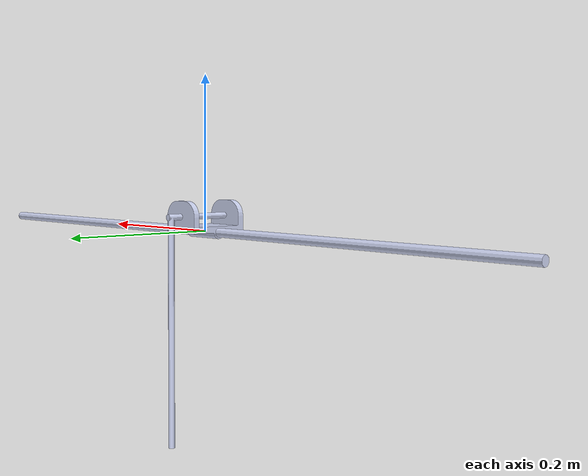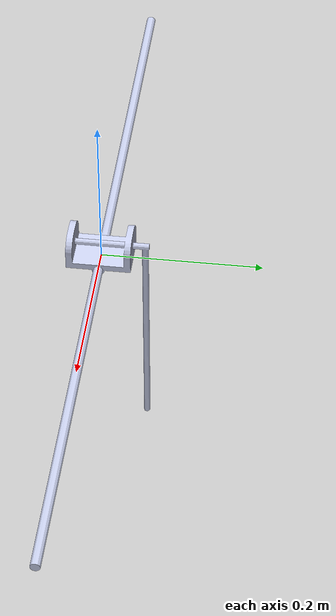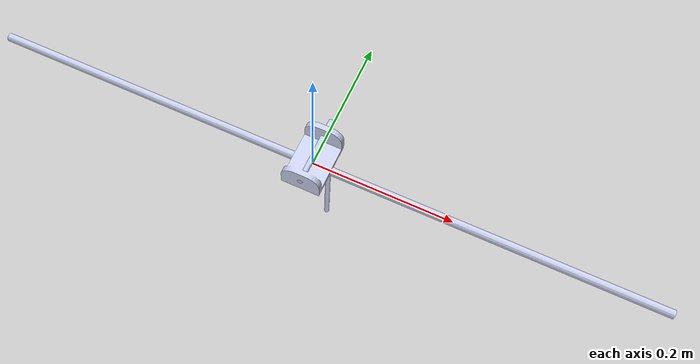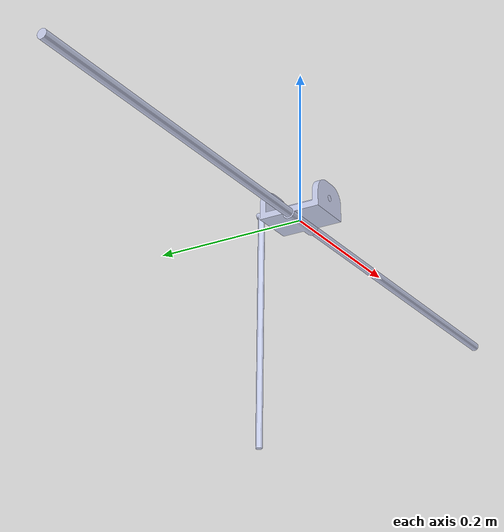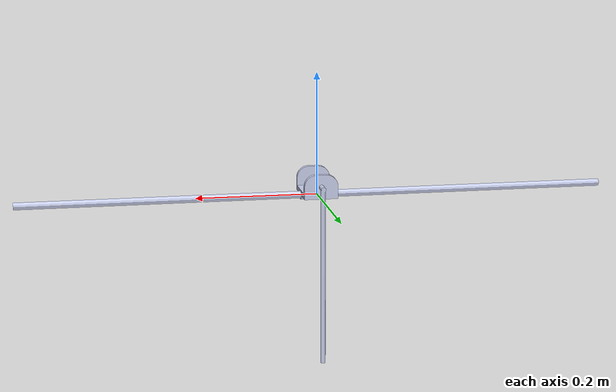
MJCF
<mujoco model="625">
  <compiler angle="radian"/>

  <asset>
    <mesh name="worldframe" content_type="model/stl" file="worldframe.STL"/>
    <mesh name="cart" content_type="model/stl" file="cart.STL"/>
    <mesh name="pole" content_type="model/stl" file="pole.STL"/>
  </asset>

  <worldbody>
    <geom type="mesh" rgba="0.792157 0.819608 0.933333 1" mesh="worldframe"/>
    <body name="cart" quat="0.499998 -0.5 -0.500002 0.5">
      <inertial pos="0 -0.0115731 0" quat="0.5 0.5 0.5 0.5" mass="0.4104" diaginertia="0.00045213 0.00040602 0.00015242"/>
      <joint name="cart_prismatic" pos="0 0 0" axis="0 0 -1" type="slide" range="-0.45 0.45" damping="0.2" armature="0.3" frictionloss="0.2"/>
      <geom type="mesh" rgba="0.792157 0.819608 0.933333 1" contype="0" conaffinity="0" mesh="cart"/>
      <body name="pole" pos="0.036 -0.02 0" quat="0.499998 0.5 0.500002 0.5">
        <inertial pos="0.110629 7.64758e-07 0.00747893" quat="0.533808 0.463732 0.463732 0.533811" mass="0.174" diaginertia="0.00174880 0.00167606 0.00007414"/>
        <joint name="pole_continuous" pos="0 0 0" axis="0 0 1" damping="0.01" frictionloss="0.01"/>
        <geom type="mesh" rgba="0.792157 0.819608 0.933333 1" contype="0" conaffinity="0" mesh="pole"/>
      </body>
    </body>
  </worldbody>
  <actuator>
     <motor joint="cart_prismatic" name="cart_motor" ctrllimited="true" ctrlrange="-60 60"/>
</actuator>
</mujoco>
